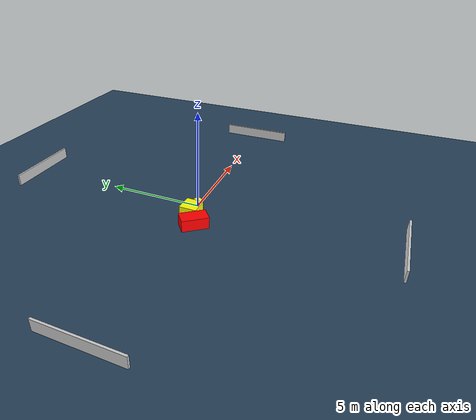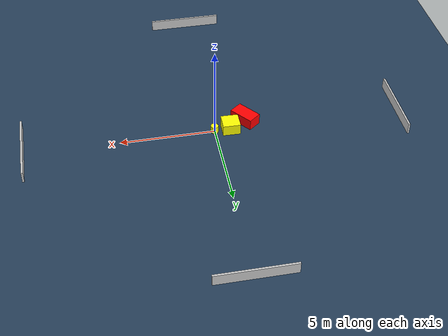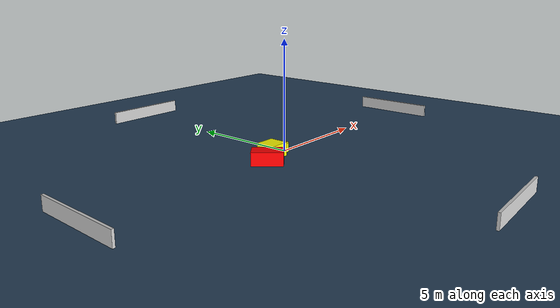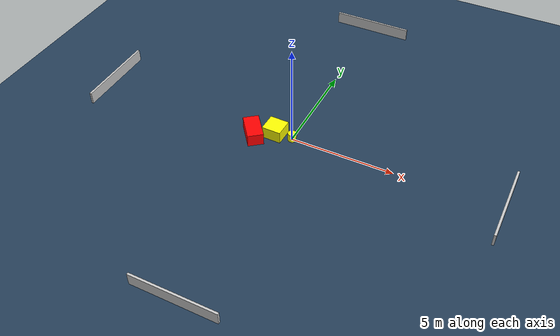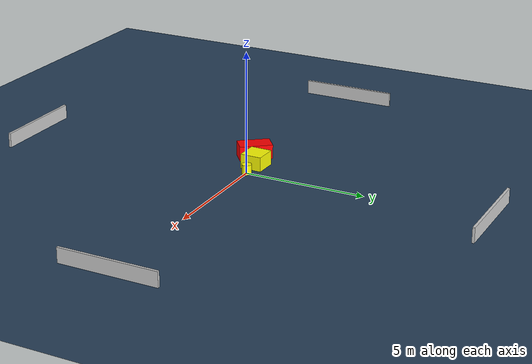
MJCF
<?xml version="1.0" ?>
<mujoco model="generated_environment">
  <option timestep="0.01" integrator="RK4" cone="elliptic"/>
  <default>
    <geom density="1"/>
  </default>
  <asset>
    <texture builtin="gradient" height="3072" name="skybox" rgb1="0.3 0.5 0.7" rgb2="0 0 0" type="skybox" width="512"/>
    <texture builtin="checker" height="300" name="groundplane" rgb1="0.2 0.3 0.4" rgb2="0.1 0.2 0.3" type="2d" width="300"/>
    <material name="groundplane" reflectance="0.2" texrepeat="5 5" texture="groundplane"/>
  </asset>
  <worldbody>
    <light dir="0 0 -1" directional="true" pos="0 0 1.5"/>
    <geom condim="3" friction="0.5 0.005 0.001" material="groundplane" name="floor" pos="0 0 0" size="0 0 0.05" type="plane"/>
    <body name="walls">
      <geom name="wall_1" condim="4" pos="-10.0 0.0 0.3" rgba="0.800000011920929 0.800000011920929 0.800000011920929 1.0" size="0.05 2.0 0.3" type="box"/>
      <geom name="wall_2" condim="4" pos="10.0 0.0 0.3" rgba="0.800000011920929 0.800000011920929 0.800000011920929 1.0" size="0.05 2.0 0.3" type="box"/>
      <geom name="wall_3" condim="4" pos="0.0 -10.0 0.3" rgba="0.800000011920929 0.800000011920929 0.800000011920929 1.0" size="2.0 0.05 0.3" type="box"/>
      <geom name="wall_4" condim="4" pos="0.0 10.0 0.3" rgba="0.800000011920929 0.800000011920929 0.800000011920929 1.0" size="2.0 0.05 0.3" type="box"/>
    </body>
    <body name="robot">
      <joint name="joint_x" type="slide" pos="0 0 0" axis="1 0 0"/>
      <joint name="joint_y" type="slide" pos="0 0 0" axis="0 1 0"/>
      <geom name="robot" type="cylinder" pos="0.0 0.0 0.2" size="0.2 0.2 0.0" mass="5.0" friction="1.0 0.005 0.0001" condim="4" rgba="1.0 1.0 0.0 1.0"/>
    </body>
    <body name="obstacle_1_movable">
      <geom name="obstacle_1_movable" condim="4" pos="-0.8583514459901558 -0.021460912673674625 0.3" euler="0 0 178.85984502634636" friction="0.0 0.005 0.001" rgba="1.0 1.0 0.0 1.0" size="0.4626560870086441 0.4423572010504371 0.3" type="box" mass="0.1"/>
      <joint type="free"/>
    </body>
    <body name="obstacle_2_static">
      <geom name="obstacle_2_static" condim="4" pos="-1.7527093026206528 -0.5471855494982978 0.3" euler="0 0 128.11346299150634" friction="0.0 0.005 0.001" rgba="1.0 0.0 0.0 1.0" size="0.6785208755971699 0.3770266686678118 0.3" type="box"/>
    </body>
  </worldbody>
  <actuator>
    <motor name="actuator_x" joint="joint_x" gear="1" ctrlrange="-1 1"/>
    <motor name="actuator_y" joint="joint_y" gear="1" ctrlrange="-1 1"/>
  </actuator>
</mujoco>
